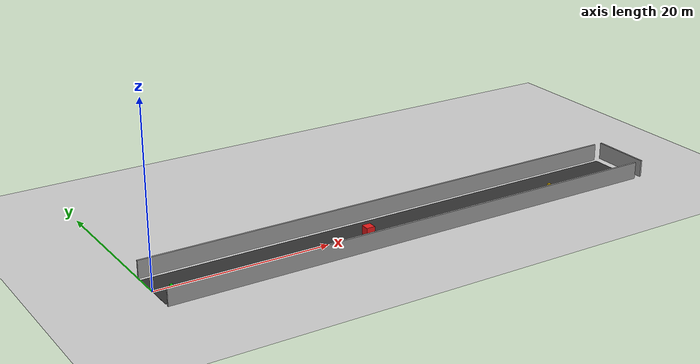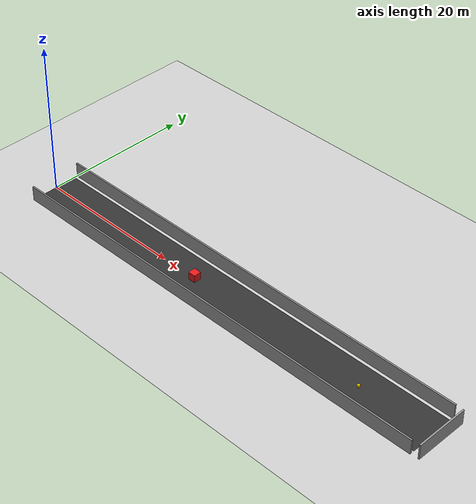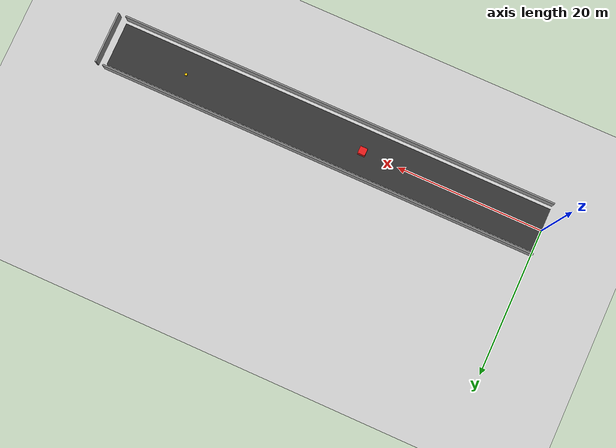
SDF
<?xml version="1.0" ?>
<sdf version="1.6">
  <world name="test_pist">

    <scene>
      <ambient>0.6 0.6 0.6 1</ambient>
      <background>0.7 0.8 0.9 1</background>
      <shadows>false</shadows>
    </scene>

    <light name="sun" type="directional">
      <cast_shadows>false</cast_shadows>
      <pose>0 0 20 0 0 0</pose>
      <diffuse>1 1 1 1</diffuse>
      <specular>0.1 0.1 0.1 1</specular>
      <direction>0 0 -1</direction>
    </light>

    <include>
      <uri>model://ground_plane</uri>
    </include>

    <physics type="ode">
      <real_time_update_rate>1000.0</real_time_update_rate>
      <max_step_size>0.001</max_step_size>
    </physics>

    <!-- Road: 60m long, 6m wide, along +X axis, centered at y=0 -->
    <model name="road"><static>true</static><pose>30 0 0.005 0 0 0</pose>
      <link name="link">
        <visual name="v"><geometry><box><size>60 6 0.01</size></box></geometry>
          <material><ambient>0.2 0.2 0.2 1</ambient><diffuse>0.2 0.2 0.2 1</diffuse></material></visual>
      </link>
    </model>

    <!-- Left wall -->
    <model name="wall_left"><static>true</static><pose>30 3.5 1.0 0 0 0</pose>
      <link name="link">
        <visual name="v"><geometry><box><size>60 0.2 2.0</size></box></geometry>
          <material><ambient>0.6 0.6 0.6 1</ambient><diffuse>0.6 0.6 0.6 1</diffuse></material></visual>
        <collision name="c"><geometry><box><size>60 0.2 2.0</size></box></geometry></collision>
      </link>
    </model>

    <!-- Right wall -->
    <model name="wall_right"><static>true</static><pose>30 -3.5 1.0 0 0 0</pose>
      <link name="link">
        <visual name="v"><geometry><box><size>60 0.2 2.0</size></box></geometry>
          <material><ambient>0.6 0.6 0.6 1</ambient><diffuse>0.6 0.6 0.6 1</diffuse></material></visual>
        <collision name="c"><geometry><box><size>60 0.2 2.0</size></box></geometry></collision>
      </link>
    </model>

    <!-- End wall -->
    <model name="wall_end"><static>true</static><pose>61 0 1.0 0 0 0</pose>
      <link name="link">
        <visual name="v"><geometry><box><size>0.2 7 2.0</size></box></geometry>
          <material><ambient>0.6 0.6 0.6 1</ambient><diffuse>0.6 0.6 0.6 1</diffuse></material></visual>
        <collision name="c"><geometry><box><size>0.2 7 2.0</size></box></geometry></collision>
      </link>
    </model>

    <!-- Obstacle: red box 25m ahead of spawn, center of lane -->
    <model name="engel"><static>true</static><pose>25 0 0.5 0 0 0</pose>
      <link name="link">
        <visual name="v"><geometry><box><size>1.0 1.0 1.0</size></box></geometry>
          <material><ambient>0.9 0.1 0.1 1</ambient><diffuse>0.9 0.1 0.1 1</diffuse></material></visual>
        <collision name="c"><geometry><box><size>1.0 1.0 1.0</size></box></geometry></collision>
      </link>
    </model>

    <!-- Spawn marker (green box, no collision) -->
    <model name="spawn_noktasi"><static>true</static><pose>2 0 0.15 0 0 0</pose>
      <link name="link">
        <visual name="v"><geometry><box><size>0.3 0.3 0.3</size></box></geometry>
          <material><ambient>0 0.9 0 1</ambient><diffuse>0 0.9 0 1</diffuse></material></visual>
      </link>
    </model>

    <!-- Goal marker (yellow box, no collision) -->
    <model name="hedef_noktasi"><static>true</static><pose>50 0 0.15 0 0 0</pose>
      <link name="link">
        <visual name="v"><geometry><box><size>0.3 0.3 0.3</size></box></geometry>
          <material><ambient>1 0.8 0 1</ambient><diffuse>1 0.8 0 1</diffuse></material></visual>
      </link>
    </model>

    <gui>
      <camera name="user_camera">
        <pose>30 -20 15 0 0.6 1.57</pose>
      </camera>
    </gui>

  </world>
</sdf>
